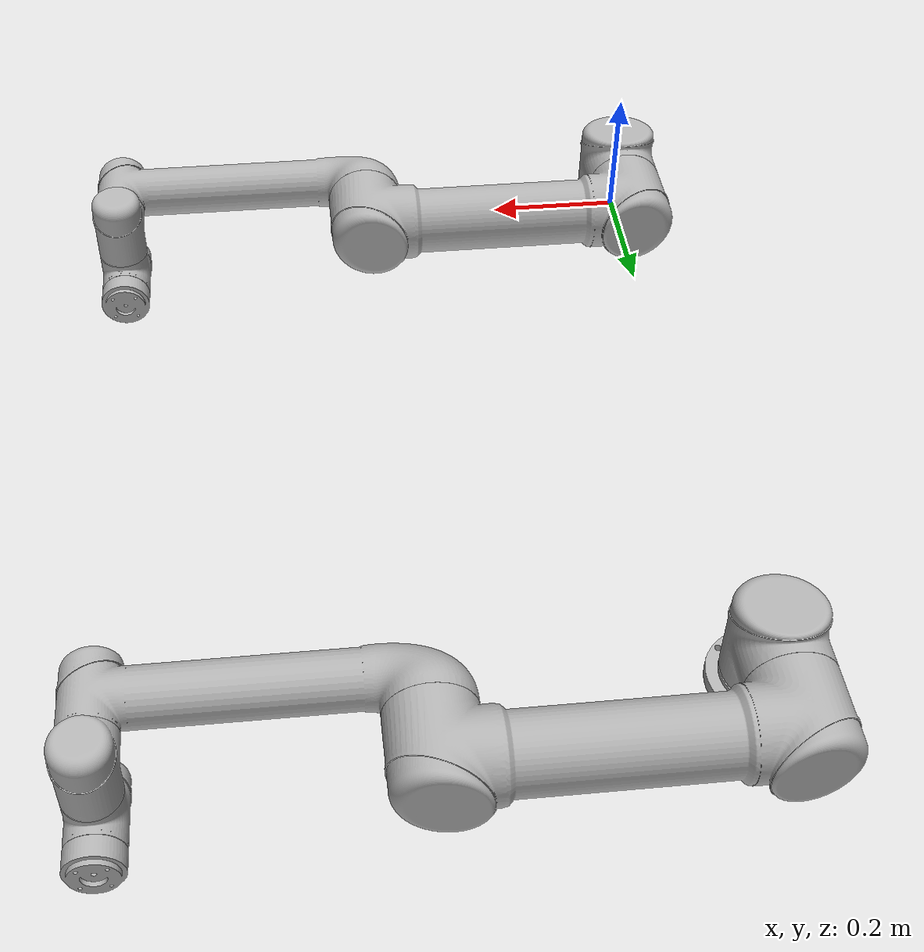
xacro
<?xml version="1.0"?>
<robot xmlns:xacro="http://www.ros.org/wiki/xacro" name="multi_ur">

  <!-- 正确的 include 写法 -->
  <xacro:include filename="spawns/ur5_spawn_hand.xacro"/>

  <link name="world"/>

  <joint name="world_to_robot1" type="fixed">
    <parent link="world"/>
    <child link="robot1_base_link"/>
    <origin xyz="0 0 0" rpy="0 0 0"/>
  </joint>

  <xacro:ur5_spawn_hand prefix="robot1_" xyz="0 0 0" rpy="0 0 0"/>

  <joint name="world_to_robot2" type="fixed">
    <parent link="world"/>
    <child link="robot2_base_link"/>
    <origin xyz="0 1 0" rpy="0 0 0"/>
  </joint>

  <xacro:ur5_spawn_hand prefix="robot2_" xyz="0 1 0" rpy="0 0 0"/>

</robot>

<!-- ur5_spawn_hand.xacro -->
<robot xmlns:xacro="http://www.ros.org/wiki/xacro">
<xacro:macro name="ur5_spawn_hand" params="prefix xyz rpy">
  <!-- 加载 UR5 vistion mesh -->
<xacro:property name="mesh_root" value="/home/unvrx/URCell/types/ur_description/meshes" />
  <!-- 加载 UR5 关节限制参数 -->
  <xacro:property name="joint_limits"
                  value="${xacro.load_yaml('spawns/joint_limits.yaml')}" />

  <!--            LINKS             -->

  <link name="${prefix}base_link" />

  <link name="${prefix}base_link_inertia">
    <visual>
      <origin rpy="0 0 3.141592653589793" xyz="0 0 0" />
      <geometry>
        <mesh filename="file://${mesh_root}/ur5/visual/base.dae" />
      </geometry>
      <material name="LightGrey"><color rgba="0.7 0.7 0.7 1.0" /></material>
    </visual>
    <collision>
      <origin rpy="0 0 3.141592653589793" xyz="0 0 0" />
      <geometry>
        <mesh filename="file://${mesh_root}/ur5/collision/base.stl" />
      </geometry>
    </collision>
    <inertial>
      <mass value="4.0" />
      <origin rpy="0 0 0" xyz="0 0 0" />
      <inertia ixx="0.00443333156" ixy="0.0" ixz="0.0" iyy="0.00443333156" iyz="0.0" izz="0.0072" />
    </inertial>
  </link>

  <link name="${prefix}shoulder_link">
    <visual>
      <origin rpy="0 0 3.141592653589793" xyz="0 0 0" />
      <geometry>
        <mesh filename="file://${mesh_root}/ur5/visual/shoulder.dae" />
      </geometry>
      <material name="LightGrey"><color rgba="0.7 0.7 0.7 1.0" /></material>
    </visual>
    <collision>
      <origin rpy="0 0 3.141592653589793" xyz="0 0 0" />
      <geometry>
        <mesh filename="file://${mesh_root}/ur5/collision/shoulder.stl" />
      </geometry>
    </collision>
    <inertial>
      <mass value="3.7" />
      <origin rpy="0 0 0" xyz="0.0 -0.00193 -0.02561" />
      <inertia ixx="0.014972358333333331" ixy="0" ixz="0" iyy="0.014972358333333331" iyz="0" izz="0.01040625" />
    </inertial>
  </link>

  <link name="${prefix}upper_arm_link">
    <visual>
      <origin rpy="1.5707963267948966 0 -1.5707963267948966" xyz="0 0 0.13585" />
      <geometry>
        <mesh filename="file://${mesh_root}/ur5/visual/upperarm.dae" />
      </geometry>
      <material name="LightGrey"><color rgba="0.7 0.7 0.7 1.0" /></material>
    </visual>
    <collision>
      <origin rpy="1.5707963267948966 0 -1.5707963267948966" xyz="0 0 0.13585" />
      <geometry>
        <mesh filename="file://${mesh_root}/ur5/collision/upperarm.stl" />
      </geometry>
    </collision>
    <inertial>
      <mass value="8.393" />
      <origin rpy="0 1.570796326794897 0" xyz="-0.2125 0.0 0.11336" />
      <inertia ixx="0.13388583541666665" ixy="0" ixz="0" iyy="0.13388583541666665" iyz="0" izz="0.0151074" />
    </inertial>
  </link>

  <link name="${prefix}forearm_link">
    <visual>
      <origin rpy="1.5707963267948966 0 -1.5707963267948966" xyz="0 0 0.0165" />
      <geometry>
        <mesh filename="file://${mesh_root}/ur5/visual/forearm.dae" />
      </geometry>
      <material name="LightGrey"><color rgba="0.7 0.7 0.7 1.0" /></material>
    </visual>
    <collision>
      <origin rpy="1.5707963267948966 0 -1.5707963267948966" xyz="0 0 0.0165" />
      <geometry>
        <mesh filename="file://${mesh_root}/ur5/collision/forearm.stl" />
      </geometry>
    </collision>
    <inertial>
      <mass value="2.33" />
      <origin rpy="0 1.570796326794897 0" xyz="-0.24225 0.0 0.0265" />
      <inertia ixx="0.031216803515624995" ixy="0" ixz="0" iyy="0.031216803515624995" iyz="0" izz="0.004095" />
    </inertial>
  </link>

  <link name="${prefix}wrist_1_link">
    <visual>
      <origin rpy="1.5707963267948966 0 0" xyz="0 0 -0.093" />
      <geometry>
        <mesh filename="file://${mesh_root}/ur5/visual/wrist1.dae" />
      </geometry>
      <material name="LightGrey"><color rgba="0.7 0.7 0.7 1.0" /></material>
    </visual>
    <collision>
      <origin rpy="1.5707963267948966 0 0" xyz="0 0 -0.093" />
      <geometry>
        <mesh filename="file://${mesh_root}/ur5/collision/wrist1.stl" />
      </geometry>
    </collision>
    <inertial>
      <mass value="1.219" />
      <origin rpy="0 0 0" xyz="0.0 -0.01634 -0.0018" />
      <inertia ixx="0.002013889583333333" ixy="0" ixz="0" iyy="0.002013889583333333" iyz="0" izz="0.0021942" />
    </inertial>
  </link>

  <link name="${prefix}wrist_2_link">
    <visual>
      <origin rpy="0 0 0" xyz="0 0 -0.095" />
      <geometry>
        <mesh filename="file://${mesh_root}/ur5/visual/wrist2.dae" />
      </geometry>
      <material name="LightGrey"><color rgba="0.7 0.7 0.7 1.0" /></material>
    </visual>
    <collision>
      <origin rpy="0 0 0" xyz="0 0 -0.095" />
      <geometry>
        <mesh filename="file://${mesh_root}/ur5/collision/wrist2.stl" />
      </geometry>
    </collision>
    <inertial>
      <mass value="1.219" />
      <origin rpy="0 0 0" xyz="0.0 0.01634 -0.0018" />
      <inertia ixx="0.0018310395833333333" ixy="0" ixz="0" iyy="0.0018310395833333333" iyz="0" izz="0.0021942" />
    </inertial>
  </link>

  <link name="${prefix}wrist_3_link">
    <visual>
      <origin rpy="1.5707963267948966 0 0" xyz="0 0 -0.0818" />
      <geometry>
        <mesh filename="file://${mesh_root}/ur5/visual/wrist3.dae" />
      </geometry>
      <material name="LightGrey"><color rgba="0.7 0.7 0.7 1.0" /></material>
    </visual>
    <collision>
      <origin rpy="1.5707963267948966 0 0" xyz="0 0 -0.0818" />
      <geometry>
        <mesh filename="file://${mesh_root}/ur5/collision/wrist3.stl" />
      </geometry>
    </collision>
    <inertial>
      <mass value="0.1879" />
      <origin rpy="0 0 0" xyz="0.0 0.0 -0.001159" />
      <inertia ixx="8.062475833333332e-05" ixy="0" ixz="0" iyy="8.062475833333332e-05" iyz="0" izz="0.0001321171875" />
    </inertial>
  </link>

  <!--            JOINTS            -->

  <joint name="${prefix}base_link-base_link_inertia" type="fixed">
    <parent link="${prefix}base_link" />
    <child link="${prefix}base_link_inertia" />
    <origin rpy="0 0 3.141592653589793" xyz="0 0 0" />
  </joint>

  <joint name="${prefix}shoulder_pan_joint" type="revolute">
    <parent link="${prefix}base_link_inertia" />
    <child link="${prefix}shoulder_link" />
    <origin rpy="0 0 0" xyz="0 0 0.089159" />
    <axis xyz="0 0 1" />
    <limit effort="150.0"
      lower="${joint_limits.joint_limits.shoulder_pan_joint.min_position}"
      upper="${joint_limits.joint_limits.shoulder_pan_joint.max_position}"
      velocity="${joint_limits.joint_limits.shoulder_pan_joint.max_velocity}" />
  </joint>

  <joint name="${prefix}shoulder_lift_joint" type="revolute">
    <parent link="${prefix}shoulder_link" />
    <child link="${prefix}upper_arm_link" />
    <origin rpy="1.570796327 0 0" xyz="0 0 0" />
    <axis xyz="0 0 1" />
    <limit effort="150.0"
      lower="${joint_limits.joint_limits.shoulder_lift_joint.min_position}"
      upper="${joint_limits.joint_limits.shoulder_lift_joint.max_position}"
      velocity="${joint_limits.joint_limits.shoulder_lift_joint.max_velocity}" />
  </joint>

  <joint name="${prefix}elbow_joint" type="revolute">
    <parent link="${prefix}upper_arm_link" />
    <child link="${prefix}forearm_link" />
    <origin rpy="0 0 0" xyz="-0.425 0 0" />
    <axis xyz="0 0 1" />
    <limit effort="150.0"
      lower="${joint_limits.joint_limits.elbow_joint.min_position}"
      upper="${joint_limits.joint_limits.elbow_joint.max_position}"
      velocity="${joint_limits.joint_limits.elbow_joint.max_velocity}" />
  </joint>

  <joint name="${prefix}wrist_1_joint" type="revolute">
    <parent link="${prefix}forearm_link" />
    <child link="${prefix}wrist_1_link" />
    <origin rpy="0 0 0" xyz="-0.39225 0 0.10915" />
    <axis xyz="0 0 1" />
    <limit effort="28.0"
      lower="${joint_limits.joint_limits.wrist_1_joint.min_position}"
      upper="${joint_limits.joint_limits.wrist_1_joint.max_position}"
      velocity="${joint_limits.joint_limits.wrist_1_joint.max_velocity}" />
  </joint>

  <joint name="${prefix}wrist_2_joint" type="revolute">
    <parent link="${prefix}wrist_1_link" />
    <child link="${prefix}wrist_2_link" />
    <origin rpy="1.570796327 0 0" xyz="0 -0.09465 0" />
    <axis xyz="0 0 1" />
    <limit effort="28.0"
      lower="${joint_limits.joint_limits.wrist_2_joint.min_position}"
      upper="${joint_limits.joint_limits.wrist_2_joint.max_position}"
      velocity="${joint_limits.joint_limits.wrist_2_joint.max_velocity}" />
  </joint>

  <joint name="${prefix}wrist_3_joint" type="revolute">
    <parent link="${prefix}wrist_2_link" />
    <child link="${prefix}wrist_3_link" />
    <origin rpy="1.570796326589793 3.141592653589793 3.141592653589793" xyz="0 0.0823 0" />
    <axis xyz="0 0 1" />
    <limit effort="28.0"
      lower="${joint_limits.joint_limits.wrist_3_joint.min_position}"
      upper="${joint_limits.joint_limits.wrist_3_joint.max_position}"
      velocity="${joint_limits.joint_limits.wrist_3_joint.max_velocity}" />
  </joint>

</xacro:macro>

</robot>
